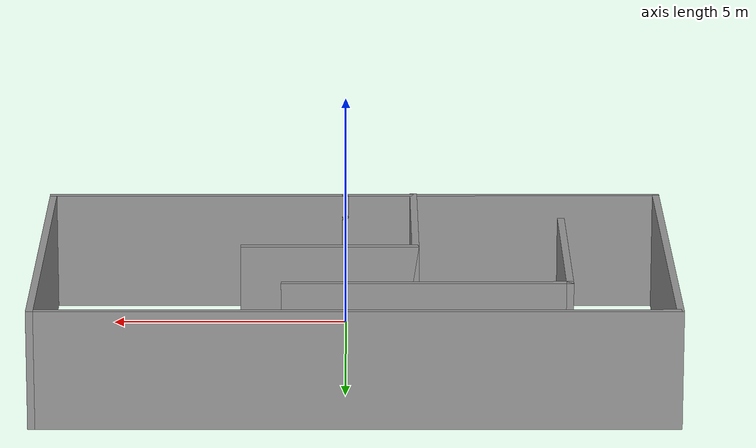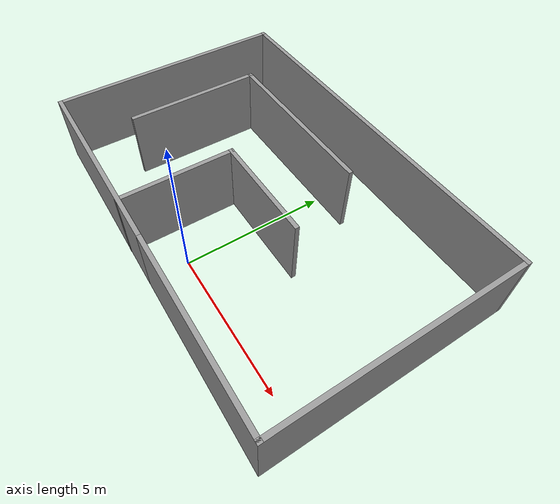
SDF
<?xml version='1.0'?>
<sdf version='1.7'>
  <model name='demo_race_track'>
    <pose>-0.19 2.90114 0 0 -0 0</pose>
    <link name='Wall_10'>
      <collision name='Wall_10_Collision'>
        <geometry>
          <box>
            <size>3.75 0.15 2.5</size>
          </box>
        </geometry>
        <pose>0 0 1.25 0 -0 0</pose>
      </collision>
      <visual name='Wall_10_Visual'>
        <pose>0 0 1.25 0 -0 0</pose>
        <geometry>
          <box>
            <size>3.75 0.15 2.5</size>
          </box>
        </geometry>
        <material>
          <script>
            <uri>file://media/materials/scripts/gazebo.material</uri>
            <name>Gazebo/Grey</name>
          </script>
          <ambient>1 1 1 1</ambient>
        </material>
        <meta>
          <layer>0</layer>
        </meta>
      </visual>
      <pose>0.522756 -0.328861 0 0 -0 0</pose>
    </link>
    <link name='Wall_14'>
      <collision name='Wall_14_Collision'>
        <geometry>
          <box>
            <size>4.75 0.15 2.5</size>
          </box>
        </geometry>
        <pose>0 0 1.25 0 -0 0</pose>
      </collision>
      <visual name='Wall_14_Visual'>
        <pose>0 0 1.25 0 -0 0</pose>
        <geometry>
          <box>
            <size>4.75 0.15 2.5</size>
          </box>
        </geometry>
        <material>
          <script>
            <uri>file://media/materials/scripts/gazebo.material</uri>
            <name>Gazebo/Grey</name>
          </script>
          <ambient>1 1 1 1</ambient>
        </material>
        <meta>
          <layer>0</layer>
        </meta>
      </visual>
      <pose>-4.41221 -0.02773 0 0 -0 1.5708</pose>
    </link>
    <link name='Wall_15'>
      <collision name='Wall_15_Collision'>
        <geometry>
          <box>
            <size>6 0.15 2.5</size>
          </box>
        </geometry>
        <pose>0 0 1.25 0 -0 0</pose>
      </collision>
      <visual name='Wall_15_Visual'>
        <pose>0 0 1.25 0 -0 0</pose>
        <geometry>
          <box>
            <size>6 0.15 2.5</size>
          </box>
        </geometry>
        <material>
          <script>
            <uri>file://media/materials/scripts/gazebo.material</uri>
            <name>Gazebo/Grey</name>
          </script>
          <ambient>1 1 1 1</ambient>
        </material>
        <meta>
          <layer>0</layer>
        </meta>
      </visual>
      <pose>-1.48721 2.27227 0 0 -0 0</pose>
    </link>
    <link name='Wall_3'>
      <collision name='Wall_3_Collision'>
        <geometry>
          <box>
            <size>6.5 0.15 2.5</size>
          </box>
        </geometry>
        <pose>0 0 1.25 0 -0 0</pose>
      </collision>
      <visual name='Wall_3_Visual'>
        <pose>0 0 1.25 0 -0 0</pose>
        <geometry>
          <box>
            <size>6.5 0.15 2.5</size>
          </box>
        </geometry>
        <material>
          <script>
            <uri>file://media/materials/scripts/gazebo.material</uri>
            <name>Gazebo/Grey</name>
          </script>
          <ambient>1 1 1 1</ambient>
        </material>
        <meta>
          <layer>0</layer>
        </meta>
      </visual>
      <pose>3.375 -4.17114 0 0 -0 0</pose>
    </link>
    <link name='Wall_4'>
      <collision name='Wall_4_Collision'>
        <geometry>
          <box>
            <size>8.5 0.15 2.5</size>
          </box>
        </geometry>
        <pose>0 0 1.25 0 -0 0</pose>
      </collision>
      <visual name='Wall_4_Visual'>
        <pose>0 0 1.25 0 -0 0</pose>
        <geometry>
          <box>
            <size>8.5 0.15 2.5</size>
          </box>
        </geometry>
        <material>
          <script>
            <uri>file://media/materials/scripts/gazebo.material</uri>
            <name>Gazebo/Grey</name>
          </script>
          <ambient>1 1 1 1</ambient>
        </material>
        <meta>
          <layer>0</layer>
        </meta>
      </visual>
      <pose>6.55 0.003861 0 0 -0 1.5708</pose>
    </link>
    <link name='Wall_5'>
      <collision name='Wall_5_Collision'>
        <geometry>
          <box>
            <size>13.25 0.15 2.5</size>
          </box>
        </geometry>
        <pose>0 0 1.25 0 -0 0</pose>
      </collision>
      <visual name='Wall_5_Visual'>
        <pose>0 0 1.25 0 -0 0</pose>
        <geometry>
          <box>
            <size>13.25 0.15 2.5</size>
          </box>
        </geometry>
        <material>
          <script>
            <uri>file://media/materials/scripts/gazebo.material</uri>
            <name>Gazebo/Grey</name>
          </script>
          <ambient>1 1 1 1</ambient>
        </material>
        <meta>
          <layer>0</layer>
        </meta>
      </visual>
      <pose>-0 4.17886 0 0 -0 3.14159</pose>
    </link>
    <link name='Wall_6'>
      <collision name='Wall_6_Collision'>
        <geometry>
          <box>
            <size>8.5 0.15 2.5</size>
          </box>
        </geometry>
        <pose>0 0 1.25 0 -0 0</pose>
      </collision>
      <visual name='Wall_6_Visual'>
        <pose>0 0 1.25 0 -0 0</pose>
        <geometry>
          <box>
            <size>8.5 0.15 2.5</size>
          </box>
        </geometry>
        <material>
          <script>
            <uri>file://media/materials/scripts/gazebo.material</uri>
            <name>Gazebo/Grey</name>
          </script>
          <ambient>1 1 1 1</ambient>
        </material>
        <meta>
          <layer>0</layer>
        </meta>
      </visual>
      <pose>-6.55 0.003861 0 0 -0 -1.5708</pose>
    </link>
    <link name='Wall_7'>
      <collision name='Wall_7_Collision'>
        <geometry>
          <box>
            <size>6.9 0.15 2.5</size>
          </box>
        </geometry>
        <pose>0 0 1.25 0 -0 0</pose>
      </collision>
      <visual name='Wall_7_Visual'>
        <pose>0 0 1.25 0 -0 0</pose>
        <geometry>
          <box>
            <size>6.9 0.15 2.5</size>
          </box>
        </geometry>
        <material>
          <script>
            <uri>file://media/materials/scripts/gazebo.material</uri>
            <name>Gazebo/Grey</name>
          </script>
          <ambient>1 1 1 1</ambient>
        </material>
        <meta>
          <layer>0</layer>
        </meta>
      </visual>
      <pose>-3.175 -4.17114 0 0 -0 0</pose>
    </link>
    <link name='Wall_9'>
      <collision name='Wall_9_Collision'>
        <geometry>
          <box>
            <size>4 0.15 2.5</size>
          </box>
        </geometry>
        <pose>0 0 1.25 0 -0 0</pose>
      </collision>
      <visual name='Wall_9_Visual'>
        <pose>0 0 1.25 0 -0 0</pose>
        <geometry>
          <box>
            <size>4 0.15 2.5</size>
          </box>
        </geometry>
        <material>
          <script>
            <uri>file://media/materials/scripts/gazebo.material</uri>
            <name>Gazebo/Grey</name>
          </script>
          <ambient>1 1 1 1</ambient>
        </material>
        <meta>
          <layer>0</layer>
        </meta>
      </visual>
      <pose>-1.27724 -2.25386 0 0 -0 1.5708</pose>
    </link>
    <static>1</static>
  </model>
</sdf>
